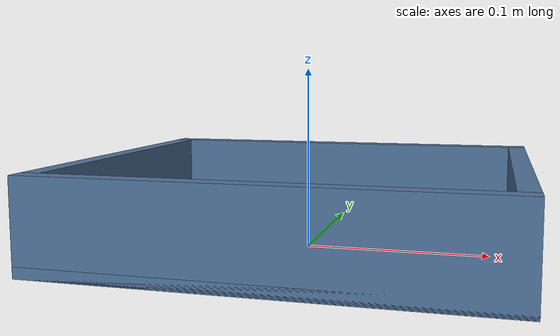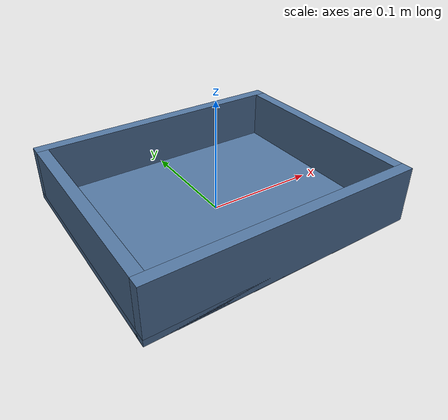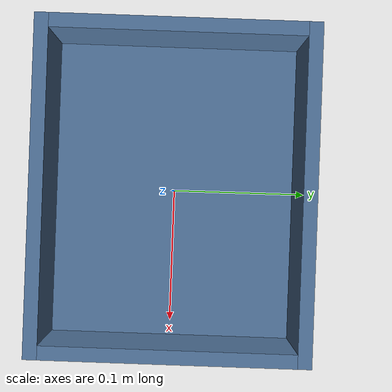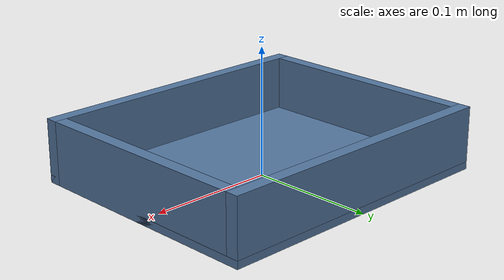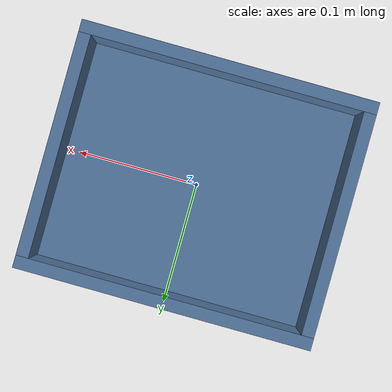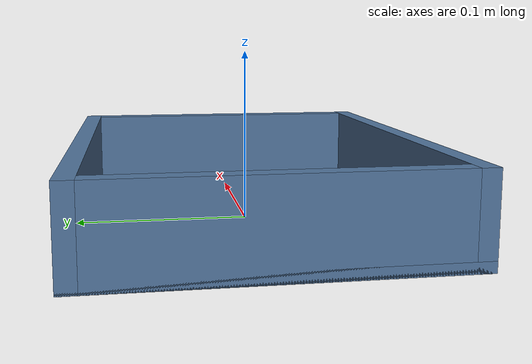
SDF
<?xml version="1.0"?>
<sdf version="1.10">
  <model name="steel_collection_bin">
    <static>true</static>
    <link name="link">
      <collision name="base_collision">
        <pose>0 0 0.003 0 0 0</pose>
        <geometry>
          <box>
            <size>0.24 0.20 0.006</size>
          </box>
        </geometry>
      </collision>
      <visual name="base_visual">
        <pose>0 0 0.003 0 0 0</pose>
        <geometry>
          <box>
            <size>0.24 0.20 0.006</size>
          </box>
        </geometry>
        <material>
          <ambient>0.18 0.25 0.34 1</ambient>
          <diffuse>0.32 0.46 0.62 1</diffuse>
          <specular>0.35 0.42 0.50 1</specular>
        </material>
      </visual>

      <collision name="front_wall_collision">
        <pose>0 0.095 0.025 0 0 0</pose>
        <geometry>
          <box>
            <size>0.24 0.01 0.05</size>
          </box>
        </geometry>
      </collision>
      <visual name="front_wall_visual">
        <pose>0 0.095 0.025 0 0 0</pose>
        <geometry>
          <box>
            <size>0.24 0.01 0.05</size>
          </box>
        </geometry>
        <material>
          <ambient>0.18 0.25 0.34 1</ambient>
          <diffuse>0.32 0.46 0.62 1</diffuse>
          <specular>0.35 0.42 0.50 1</specular>
        </material>
      </visual>

      <collision name="back_wall_collision">
        <pose>0 -0.095 0.025 0 0 0</pose>
        <geometry>
          <box>
            <size>0.24 0.01 0.05</size>
          </box>
        </geometry>
      </collision>
      <visual name="back_wall_visual">
        <pose>0 -0.095 0.025 0 0 0</pose>
        <geometry>
          <box>
            <size>0.24 0.01 0.05</size>
          </box>
        </geometry>
        <material>
          <ambient>0.18 0.25 0.34 1</ambient>
          <diffuse>0.32 0.46 0.62 1</diffuse>
          <specular>0.35 0.42 0.50 1</specular>
        </material>
      </visual>

      <collision name="left_wall_collision">
        <pose>-0.115 0 0.025 0 0 0</pose>
        <geometry>
          <box>
            <size>0.01 0.18 0.05</size>
          </box>
        </geometry>
      </collision>
      <visual name="left_wall_visual">
        <pose>-0.115 0 0.025 0 0 0</pose>
        <geometry>
          <box>
            <size>0.01 0.18 0.05</size>
          </box>
        </geometry>
        <material>
          <ambient>0.18 0.25 0.34 1</ambient>
          <diffuse>0.32 0.46 0.62 1</diffuse>
          <specular>0.35 0.42 0.50 1</specular>
        </material>
      </visual>

      <collision name="right_wall_collision">
        <pose>0.115 0 0.025 0 0 0</pose>
        <geometry>
          <box>
            <size>0.01 0.18 0.05</size>
          </box>
        </geometry>
      </collision>
      <visual name="right_wall_visual">
        <pose>0.115 0 0.025 0 0 0</pose>
        <geometry>
          <box>
            <size>0.01 0.18 0.05</size>
          </box>
        </geometry>
        <material>
          <ambient>0.18 0.25 0.34 1</ambient>
          <diffuse>0.32 0.46 0.62 1</diffuse>
          <specular>0.35 0.42 0.50 1</specular>
        </material>
      </visual>
    </link>
  </model>
</sdf>
